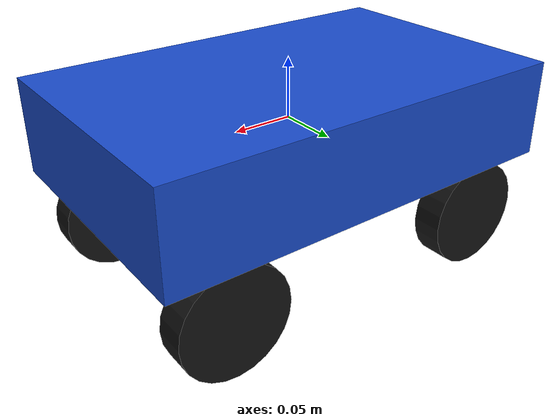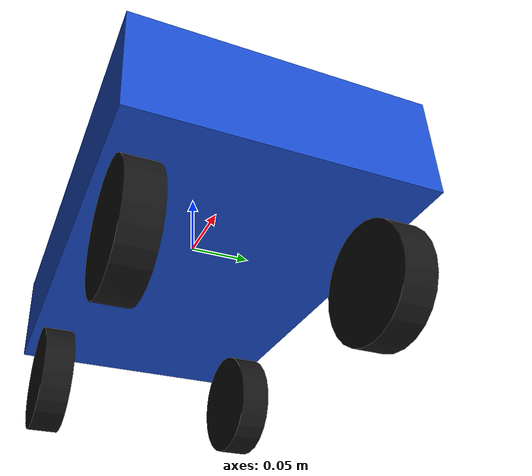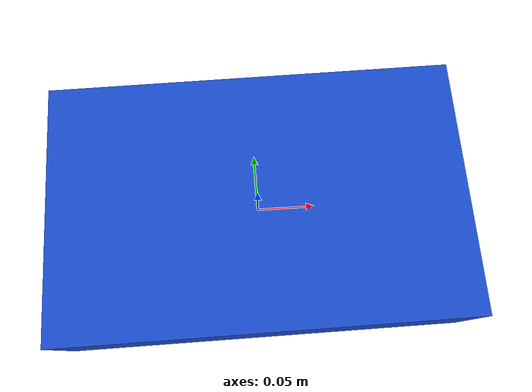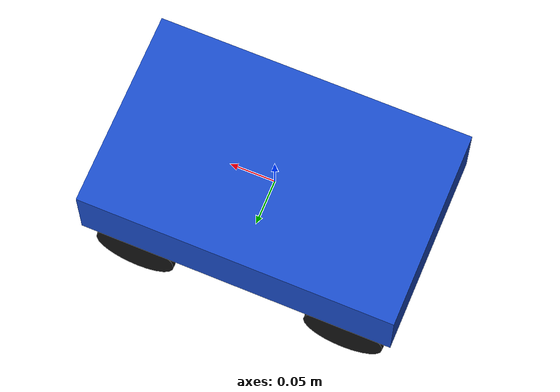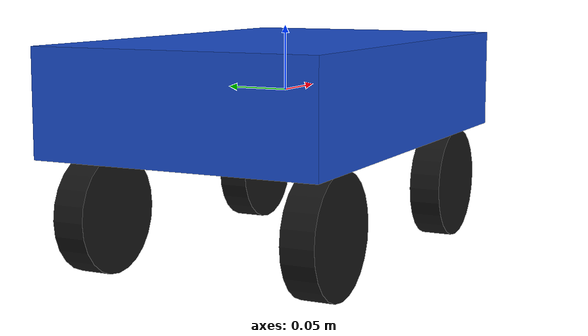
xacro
<?xml version="1.0"?>
<robot name="lka_car" xmlns:xacro="http://www.ros.org/wiki/xacro">

  <!-- Vehicle dimensions in metres -->
  <xacro:property name="chassis_length" value="0.35"/>
  <xacro:property name="chassis_width" value="0.22"/>
  <xacro:property name="chassis_height" value="0.08"/>
  <xacro:property name="wheel_radius" value="0.045"/>
  <xacro:property name="wheel_width" value="0.025"/>
  <xacro:property name="wheelbase" value="0.24"/>
  <xacro:property name="track_width" value="0.18"/>

  <!-- Chassis -->
  <link name="base_link">
    <inertial>
      <origin xyz="0 0 0"/>
      <mass value="2.0"/>
      <inertia ixx="0.008" ixy="0" ixz="0"
               iyy="0.025" iyz="0" izz="0.03"/>
    </inertial>

    <visual>
      <origin xyz="0 0 0"/>
      <geometry>
        <box size="${chassis_length} ${chassis_width} ${chassis_height}"/>
      </geometry>
      <material name="blue">
        <color rgba="0.1 0.3 0.8 1"/>
      </material>
    </visual>

    <collision>
      <origin xyz="0 0 0"/>
      <geometry>
        <box size="${chassis_length} ${chassis_width} ${chassis_height}"/>
      </geometry>
    </collision>
  </link>

  <!-- Front-left steering link -->
  <link name="front_left_steering_link"/>

  <!-- Front-right steering link -->
  <link name="front_right_steering_link"/>

  <!-- Wheel creation macro -->
  <xacro:macro name="wheel" params="name">
    <link name="${name}">
      <inertial>
        <mass value="0.15"/>
        <inertia ixx="0.0002" ixy="0" ixz="0"
                 iyy="0.0002" iyz="0" izz="0.0002"/>
      </inertial>

      <visual>
        <!-- Cylinder is rotated so its axis points along the axle -->
        <origin xyz="0 0 0" rpy="${pi/2} 0 0"/>
        <geometry>
          <cylinder radius="${wheel_radius}" length="${wheel_width}"/>
        </geometry>
        <material name="black">
          <color rgba="0.08 0.08 0.08 1"/>
        </material>
      </visual>

      <collision>
        <origin xyz="0 0 0" rpy="${pi/2} 0 0"/>
        <geometry>
          <cylinder radius="${wheel_radius}" length="${wheel_width}"/>
        </geometry>
      </collision>
    </link>
  </xacro:macro>

  <!-- Instantiate wheels -->
  <xacro:wheel name="front_left_wheel"/>
  <xacro:wheel name="front_right_wheel"/>
  <xacro:wheel name="rear_left_wheel"/>
  <xacro:wheel name="rear_right_wheel"/>

  <!-- Steering joints: rotation about the vertical Z axis -->
  <joint name="front_left_steering_joint" type="continuous">
    <parent link="base_link"/>
    <child link="front_left_steering_link"/>
    <origin xyz="${wheelbase/2} ${track_width/2} ${-chassis_height/2}"/>
    <axis xyz="0 0 1"/>
  </joint>

  <joint name="front_right_steering_joint" type="continuous">
    <parent link="base_link"/>
    <child link="front_right_steering_link"/>
    <origin xyz="${wheelbase/2} ${-track_width/2} ${-chassis_height/2}"/>
    <axis xyz="0 0 1"/>
  </joint>

  <!-- Front wheel rotation joints -->
  <joint name="front_left_wheel_joint" type="continuous">
    <parent link="front_left_steering_link"/>
    <child link="front_left_wheel"/>
    <origin xyz="0 0 ${-wheel_radius}"/>
    <axis xyz="0 1 0"/>
  </joint>

  <joint name="front_right_wheel_joint" type="continuous">
    <parent link="front_right_steering_link"/>
    <child link="front_right_wheel"/>
    <origin xyz="0 0 ${-wheel_radius}"/>
    <axis xyz="0 1 0"/>
  </joint>

  <!-- Rear wheel joints -->
  <joint name="rear_left_wheel_joint" type="continuous">
    <parent link="base_link"/>
    <child link="rear_left_wheel"/>
    <origin xyz="${-wheelbase/2} ${track_width/2} ${-chassis_height/2-wheel_radius}"/>
    <axis xyz="0 1 0"/>
  </joint>

  <joint name="rear_right_wheel_joint" type="continuous">
    <parent link="base_link"/>
    <child link="rear_right_wheel"/>
    <origin xyz="${-wheelbase/2} ${-track_width/2} ${-chassis_height/2-wheel_radius}"/>
    <axis xyz="0 1 0"/>
  </joint>

</robot>
